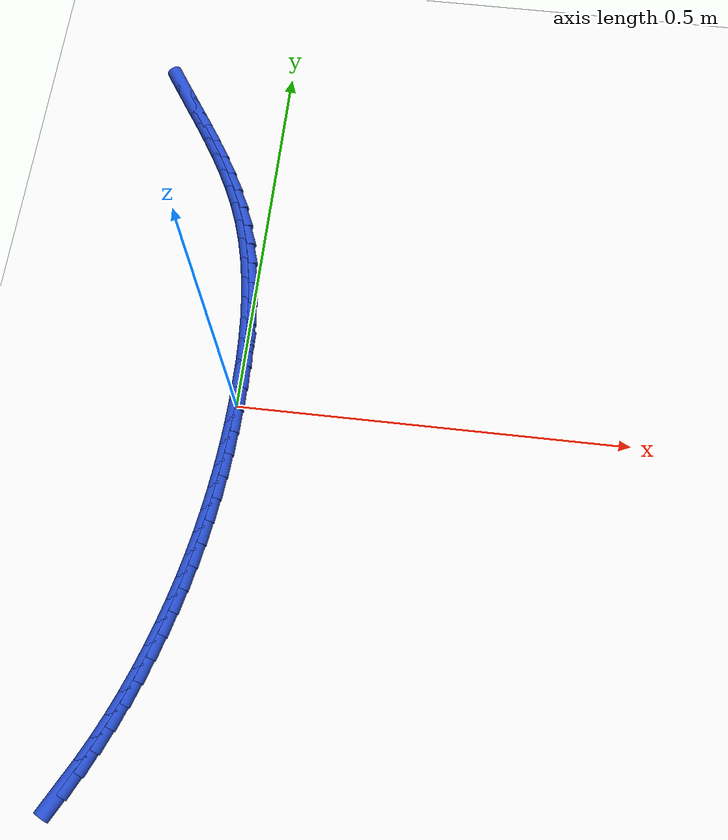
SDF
<sdf version="1.6">
 <world name="default">
  <model name="ground_plane">
   <static>1</static>
   <link name="link">
    <collision name="collision">
     <geometry><plane><normal>0 0 1</normal><size>100 100</size></plane></geometry>
     <surface><friction><ode><mu>100</mu><mu2>50</mu2></ode></friction></surface>
    </collision>
    <visual name="visual">
     <cast_shadows>0</cast_shadows>
     <geometry><plane><normal>0 0 1</normal><size>100 100</size></plane></geometry>
     <material>
      <script><uri>file://media/materials/scripts/gazebo.material</uri><name>Gazebo/WhiteGlow</name></script>
     </material>
    </visual>
   </link>
  </model>
  <model name="line">
   <link name="link_0">
    <pose>3.469446951953614e-18 3.469446951953614e-17 0.01 0 1.57 1.5611416177436104</pose>
    <collision name="collision">
     <geometry><cylinder><radius>0.01</radius><length>0.08</length></cylinder></geometry>
    </collision>
    <visual name="visual">
     <material>
      <script><name>Gazebo/Blue</name><uri>file://media/materials/scripts/gazebo.material</uri></script>
     </material>
     <geometry><cylinder><radius>0.01</radius><length>0.08</length></cylinder></geometry>
    </visual>
   </link>
   <link name="link_1">
    <pose>0.0002862361532264347 0.029646388924655667 0.01 0 1.57 -1.5546341744531493</pose>
    <collision name="collision">
     <geometry><cylinder><radius>0.01</radius><length>0.08</length></cylinder></geometry>
    </collision>
    <visual name="visual">
     <material>
      <script><name>Gazebo/Blue</name><uri>file://media/materials/scripts/gazebo.material</uri></script>
     </material>
     <geometry><cylinder><radius>0.01</radius><length>0.08</length></cylinder></geometry>
    </visual>
   </link>
   <link name="link_2">
    <pose>-0.0001943225178980463 0.05937738125562229 0.01 0 1.57 -1.525424120462081</pose>
    <collision name="collision">
     <geometry><cylinder><radius>0.01</radius><length>0.08</length></cylinder></geometry>
    </collision>
    <visual name="visual">
     <material>
      <script><name>Gazebo/Blue</name><uri>file://media/materials/scripts/gazebo.material</uri></script>
     </material>
     <geometry><cylinder><radius>0.01</radius><length>0.08</length></cylinder></geometry>
    </visual>
   </link>
   <link name="link_3">
    <pose>-0.001542775128238215 0.08907677803118398 0.01 0 1.57 -1.492536186096775</pose>
    <collision name="collision">
     <geometry><cylinder><radius>0.01</radius><length>0.08</length></cylinder></geometry>
    </collision>
    <visual name="visual">
     <material>
      <script><name>Gazebo/Blue</name><uri>file://media/materials/scripts/gazebo.material</uri></script>
     </material>
     <geometry><cylinder><radius>0.01</radius><length>0.08</length></cylinder></geometry>
    </visual>
   </link>
   <link name="link_4">
    <pose>-0.0038602207926588467 0.11862838028962479 0.01 0 1.57 -1.4556434821974928</pose>
    <collision name="collision">
     <geometry><cylinder><radius>0.01</radius><length>0.08</length></cylinder></geometry>
    </collision>
    <visual name="visual">
     <material>
      <script><name>Gazebo/Blue</name><uri>file://media/materials/scripts/gazebo.material</uri></script>
     </material>
     <geometry><cylinder><radius>0.01</radius><length>0.08</length></cylinder></geometry>
    </visual>
   </link>
   <link name="link_5">
    <pose>-0.007247758626024722 0.14791598906922881 0.01 0 1.57 -1.4143834577324519</pose>
    <collision name="collision">
     <geometry><cylinder><radius>0.01</radius><length>0.08</length></cylinder></geometry>
    </collision>
    <visual name="visual">
     <material>
      <script><name>Gazebo/Blue</name><uri>file://media/materials/scripts/gazebo.material</uri></script>
     </material>
     <geometry><cylinder><radius>0.01</radius><length>0.08</length></cylinder></geometry>
    </visual>
   </link>
   <link name="link_6">
    <pose>-0.011806487743200611 0.17682340540827998 0.01 0 1.57 -1.3683694209193837</pose>
    <collision name="collision">
     <geometry><cylinder><radius>0.01</radius><length>0.08</length></cylinder></geometry>
    </collision>
    <visual name="visual">
     <material>
      <script><name>Gazebo/Blue</name><uri>file://media/materials/scripts/gazebo.material</uri></script>
     </material>
     <geometry><cylinder><radius>0.01</radius><length>0.08</length></cylinder></geometry>
    </visual>
   </link>
   <link name="link_7">
    <pose>-0.017637507259051298 0.2052344303450625 0.01 0 1.57 -1.3172096204345358</pose>
    <collision name="collision">
     <geometry><cylinder><radius>0.01</radius><length>0.08</length></cylinder></geometry>
    </collision>
    <visual name="visual">
     <material>
      <script><name>Gazebo/Blue</name><uri>file://media/materials/scripts/gazebo.material</uri></script>
     </material>
     <geometry><cylinder><radius>0.01</radius><length>0.08</length></cylinder></geometry>
    </visual>
   </link>
   <link name="link_8">
    <pose>-0.02484191628844155 0.2330328649178603 0.01 0 1.57 -1.2605368359717921</pose>
    <collision name="collision">
     <geometry><cylinder><radius>0.01</radius><length>0.08</length></cylinder></geometry>
    </collision>
    <visual name="visual">
     <material>
      <script><name>Gazebo/Blue</name><uri>file://media/materials/scripts/gazebo.material</uri></script>
     </material>
     <geometry><cylinder><radius>0.01</radius><length>0.08</length></cylinder></geometry>
    </visual>
   </link>
   <link name="link_9">
    <pose>-0.033520813946236155 0.26010251016495745 0.01 0 1.57 -1.1986327549780607</pose>
    <collision name="collision">
     <geometry><cylinder><radius>0.01</radius><length>0.08</length></cylinder></geometry>
    </collision>
    <visual name="visual">
     <material>
      <script><name>Gazebo/Blue</name><uri>file://media/materials/scripts/gazebo.material</uri></script>
     </material>
     <geometry><cylinder><radius>0.01</radius><length>0.08</length></cylinder></geometry>
    </visual>
   </link>
   <link name="link_10">
    <pose>-0.043762321679934484 0.28633895087391464 0.01 0 1.57 -1.139213759895514</pose>
    <collision name="collision">
     <geometry><cylinder><radius>0.01</radius><length>0.08</length></cylinder></geometry>
    </collision>
    <visual name="visual">
     <material>
      <script><name>Gazebo/Blue</name><uri>file://media/materials/scripts/gazebo.material</uri></script>
     </material>
     <geometry><cylinder><radius>0.01</radius><length>0.08</length></cylinder></geometry>
    </visual>
   </link>
   <link name="link_11">
    <pose>-0.055484500389116 0.311792187167663 0.01 0 1.57 -1.0884135133434998</pose>
    <collision name="collision">
     <geometry><cylinder><radius>0.01</radius><length>0.08</length></cylinder></geometry>
    </collision>
    <visual name="visual">
     <material>
      <script><name>Gazebo/Blue</name><uri>file://media/materials/scripts/gazebo.material</uri></script>
     </material>
     <geometry><cylinder><radius>0.01</radius><length>0.08</length></cylinder></geometry>
    </visual>
   </link>
   <link name="link_12">
    <pose>-0.06848583367064764 0.33662079561162334 0.01 0 1.57 -1.046906645319212</pose>
    <collision name="collision">
     <geometry><cylinder><radius>0.01</radius><length>0.08</length></cylinder></geometry>
    </collision>
    <visual name="visual">
     <material>
      <script><name>Gazebo/Blue</name><uri>file://media/materials/scripts/gazebo.material</uri></script>
     </material>
     <geometry><cylinder><radius>0.01</radius><length>0.08</length></cylinder></geometry>
    </visual>
   </link>
   <link name="link_13">
    <pose>-0.08256231834114076 0.3609856107729212 0.01 0 1.57 -1.0149220393269758</pose>
    <collision name="collision">
     <geometry><cylinder><radius>0.01</radius><length>0.08</length></cylinder></geometry>
    </collision>
    <visual name="visual">
     <material>
      <script><name>Gazebo/Blue</name><uri>file://media/materials/scripts/gazebo.material</uri></script>
     </material>
     <geometry><cylinder><radius>0.01</radius><length>0.08</length></cylinder></geometry>
    </visual>
   </link>
   <link name="link_14">
    <pose>-0.09750995121720682 0.38504746721868244 0.01 0 1.57 -0.9924559427208953</pose>
    <collision name="collision">
     <geometry><cylinder><radius>0.01</radius><length>0.08</length></cylinder></geometry>
    </collision>
    <visual name="visual">
     <material>
      <script><name>Gazebo/Blue</name><uri>file://media/materials/scripts/gazebo.material</uri></script>
     </material>
     <geometry><cylinder><radius>0.01</radius><length>0.08</length></cylinder></geometry>
    </visual>
   </link>
   <link name="link_15">
    <pose>-0.11312472911545718 0.4089671995160327 0.01 0 1.57 -0.9793613064949989</pose>
    <collision name="collision">
     <geometry><cylinder><radius>0.01</radius><length>0.08</length></cylinder></geometry>
    </collision>
    <visual name="visual">
     <material>
      <script><name>Gazebo/Blue</name><uri>file://media/materials/scripts/gazebo.material</uri></script>
     </material>
     <geometry><cylinder><radius>0.01</radius><length>0.08</length></cylinder></geometry>
    </visual>
   </link>
   <link name="link_16">
    <pose>-0.12920264885250338 0.43290564223209793 0.01 0 1.57 -0.9754129761379993</pose>
    <collision name="collision">
     <geometry><cylinder><radius>0.01</radius><length>0.08</length></cylinder></geometry>
    </collision>
    <visual name="visual">
     <material>
      <script><name>Gazebo/Blue</name><uri>file://media/materials/scripts/gazebo.material</uri></script>
     </material>
     <geometry><cylinder><radius>0.01</radius><length>0.08</length></cylinder></geometry>
    </visual>
   </link>
   <link name="link_17">
    <pose>-0.14553970724495666 0.4570236299340035 0.01 0 1.57 -0.9803460234140288</pose>
    <collision name="collision">
     <geometry><cylinder><radius>0.01</radius><length>0.08</length></cylinder></geometry>
    </collision>
    <visual name="visual">
     <material>
      <script><name>Gazebo/Blue</name><uri>file://media/materials/scripts/gazebo.material</uri></script>
     </material>
     <geometry><cylinder><radius>0.01</radius><length>0.08</length></cylinder></geometry>
    </visual>
   </link>
   <link name="link_213">
    <pose>-0.11932916487131755 -0.4769493752666016 0.01 0 1.57 1.0761076455445753</pose>
    <collision name="collision">
     <geometry><cylinder><radius>0.01</radius><length>0.08</length></cylinder></geometry>
    </collision>
    <visual name="visual">
     <material>
      <script><name>Gazebo/Blue</name><uri>file://media/materials/scripts/gazebo.material</uri></script>
     </material>
     <geometry><cylinder><radius>0.01</radius><length>0.08</length></cylinder></geometry>
    </visual>
   </link>
   <link name="link_214">
    <pose>-0.10552132463200815 -0.4513520877701951 0.01 0 1.57 1.1150663105392227</pose>
    <collision name="collision">
     <geometry><cylinder><radius>0.01</radius><length>0.08</length></cylinder></geometry>
    </collision>
    <visual name="visual">
     <material>
      <script><name>Gazebo/Blue</name><uri>file://media/materials/scripts/gazebo.material</uri></script>
     </material>
     <geometry><cylinder><radius>0.01</radius><length>0.08</length></cylinder></geometry>
    </visual>
   </link>
   <link name="link_215">
    <pose>-0.09267451942432824 -0.42514170450375177 0.01 0 1.57 1.151814680195416</pose>
    <collision name="collision">
     <geometry><cylinder><radius>0.01</radius><length>0.08</length></cylinder></geometry>
    </collision>
    <visual name="visual">
     <material>
      <script><name>Gazebo/Blue</name><uri>file://media/materials/scripts/gazebo.material</uri></script>
     </material>
     <geometry><cylinder><radius>0.01</radius><length>0.08</length></cylinder></geometry>
    </visual>
   </link>
   <link name="link_216">
    <pose>-0.0807641376957069 -0.3983979359595753 0.01 0 1.57 1.1865050211602903</pose>
    <collision name="collision">
     <geometry><cylinder><radius>0.01</radius><length>0.08</length></cylinder></geometry>
    </collision>
    <visual name="visual">
     <material>
      <script><name>Gazebo/Blue</name><uri>file://media/materials/scripts/gazebo.material</uri></script>
     </material>
     <geometry><cylinder><radius>0.01</radius><length>0.08</length></cylinder></geometry>
    </visual>
   </link>
   <link name="link_217">
    <pose>-0.06976556789357224 -0.37120049262996696 0.01 0 1.57 1.2192922820087884</pose>
    <collision name="collision">
     <geometry><cylinder><radius>0.01</radius><length>0.08</length></cylinder></geometry>
    </collision>
    <visual name="visual">
     <material>
      <script><name>Gazebo/Blue</name><uri>file://media/materials/scripts/gazebo.material</uri></script>
     </material>
     <geometry><cylinder><radius>0.01</radius><length>0.08</length></cylinder></geometry>
    </visual>
   </link>
   <link name="link_218">
    <pose>-0.05965419846535275 -0.3436290850072288 0.01 0 1.57 1.2503309095007054</pose>
    <collision name="collision">
     <geometry><cylinder><radius>0.01</radius><length>0.08</length></cylinder></geometry>
    </collision>
    <visual name="visual">
     <material>
      <script><name>Gazebo/Blue</name><uri>file://media/materials/scripts/gazebo.material</uri></script>
     </material>
     <geometry><cylinder><radius>0.01</radius><length>0.08</length></cylinder></geometry>
    </visual>
   </link>
   <link name="link_219">
    <pose>-0.050405417858476624 -0.3157634235836623 0.01 0 1.57 1.2797727541447148</pose>
    <collision name="collision">
     <geometry><cylinder><radius>0.01</radius><length>0.08</length></cylinder></geometry>
    </collision>
    <visual name="visual">
     <material>
      <script><name>Gazebo/Blue</name><uri>file://media/materials/scripts/gazebo.material</uri></script>
     </material>
     <geometry><cylinder><radius>0.01</radius><length>0.08</length></cylinder></geometry>
    </visual>
   </link>
   <link name="link_220">
    <pose>-0.0419946145203728 -0.28768321885157094 0.01 0 1.57 1.307775374611542</pose>
    <collision name="collision">
     <geometry><cylinder><radius>0.01</radius><length>0.08</length></cylinder></geometry>
    </collision>
    <visual name="visual">
     <material>
      <script><name>Gazebo/Blue</name><uri>file://media/materials/scripts/gazebo.material</uri></script>
     </material>
     <geometry><cylinder><radius>0.01</radius><length>0.08</length></cylinder></geometry>
    </visual>
   </link>
   <link name="link_221">
    <pose>-0.034397262572274254 -0.2594674301987383 0.01 0 1.57 1.3349086936412589</pose>
    <collision name="collision">
     <geometry><cylinder><radius>0.01</radius><length>0.08</length></cylinder></geometry>
    </collision>
    <visual name="visual">
     <material>
      <script><name>Gazebo/Blue</name><uri>file://media/materials/scripts/gazebo.material</uri></script>
     </material>
     <geometry><cylinder><radius>0.01</radius><length>0.08</length></cylinder></geometry>
    </visual>
   </link>
   <link name="link_222">
    <pose>-0.02759295577665238 -0.23115890000900446 0.01 0 1.57 1.361790595904935</pose>
    <collision name="collision">
     <geometry><cylinder><radius>0.01</radius><length>0.08</length></cylinder></geometry>
    </collision>
    <visual name="visual">
     <material>
      <script><name>Gazebo/Blue</name><uri>file://media/materials/scripts/gazebo.material</uri></script>
     </material>
     <geometry><cylinder><radius>0.01</radius><length>0.08</length></cylinder></geometry>
    </visual>
   </link>
   <link name="link_223">
    <pose>-0.02156714677078403 -0.2027491057554719 0.01 0 1.57 1.388387875025708</pose>
    <collision name="collision">
     <geometry><cylinder><radius>0.01</radius><length>0.08</length></cylinder></geometry>
    </collision>
    <visual name="visual">
     <material>
      <script><name>Gazebo/Blue</name><uri>file://media/materials/scripts/gazebo.material</uri></script>
     </material>
     <geometry><cylinder><radius>0.01</radius><length>0.08</length></cylinder></geometry>
    </visual>
   </link>
   <link name="link_224">
    <pose>-0.016305735294636053 -0.17422560515011346 0.01 0 1.57 1.414620669097067</pose>
    <collision name="collision">
     <geometry><cylinder><radius>0.01</radius><length>0.08</length></cylinder></geometry>
    </collision>
    <visual name="visual">
     <material>
      <script><name>Gazebo/Blue</name><uri>file://media/materials/scripts/gazebo.material</uri></script>
     </material>
     <geometry><cylinder><radius>0.01</radius><length>0.08</length></cylinder></geometry>
    </visual>
   </link>
   <link name="link_225">
    <pose>-0.011794621088174844 -0.14557595590489972 0.01 0 1.57 1.4404131570361</pose>
    <collision name="collision">
     <geometry><cylinder><radius>0.01</radius><length>0.08</length></cylinder></geometry>
    </collision>
    <visual name="visual">
     <material>
      <script><name>Gazebo/Blue</name><uri>file://media/materials/scripts/gazebo.material</uri></script>
     </material>
     <geometry><cylinder><radius>0.01</radius><length>0.08</length></cylinder></geometry>
    </visual>
   </link>
   <link name="link_226">
    <pose>-0.00801970389136698 -0.11678771573180222 0.01 0 1.57 1.4656944734074808</pose>
    <collision name="collision">
     <geometry><cylinder><radius>0.01</radius><length>0.08</length></cylinder></geometry>
    </collision>
    <visual name="visual">
     <material>
      <script><name>Gazebo/Blue</name><uri>file://media/materials/scripts/gazebo.material</uri></script>
     </material>
     <geometry><cylinder><radius>0.01</radius><length>0.08</length></cylinder></geometry>
    </visual>
   </link>
   <link name="link_227">
    <pose>-0.0049668834441790035 -0.08784844234279211 0.01 0 1.57 1.4903994631519424</pose>
    <collision name="collision">
     <geometry><cylinder><radius>0.01</radius><length>0.08</length></cylinder></geometry>
    </collision>
    <visual name="visual">
     <material>
      <script><name>Gazebo/Blue</name><uri>file://media/materials/scripts/gazebo.material</uri></script>
     </material>
     <geometry><cylinder><radius>0.01</radius><length>0.08</length></cylinder></geometry>
    </visual>
   </link>
   <link name="link_228">
    <pose>-0.0026220594865774293 -0.05874569344984025 0.01 0 1.57 1.5144692614549744</pose>
    <collision name="collision">
     <geometry><cylinder><radius>0.01</radius><length>0.08</length></cylinder></geometry>
    </collision>
    <visual name="visual">
     <material>
      <script><name>Gazebo/Blue</name><uri>file://media/materials/scripts/gazebo.material</uri></script>
     </material>
     <geometry><cylinder><radius>0.01</radius><length>0.08</length></cylinder></geometry>
    </visual>
   </link>
   <link name="link_229">
    <pose>-0.0009711317585289327 -0.02946702676491937 0.01 0 1.57 1.537851693393964</pose>
    <collision name="collision">
     <geometry><cylinder><radius>0.01</radius><length>0.08</length></cylinder></geometry>
    </collision>
    <visual name="visual">
     <material>
      <script><name>Gazebo/Blue</name><uri>file://media/materials/scripts/gazebo.material</uri></script>
     </material>
     <geometry><cylinder><radius>0.01</radius><length>0.08</length></cylinder></geometry>
    </visual>
   </link>
   <link name="link_230">
    <pose>-1.3010426069826053e-18 -1.249000902703301e-16 0.01 0 1.57 1.5605014967552107</pose>
    <collision name="collision">
     <geometry><cylinder><radius>0.01</radius><length>0.08</length></cylinder></geometry>
    </collision>
    <visual name="visual">
     <material>
      <script><name>Gazebo/Blue</name><uri>file://media/materials/scripts/gazebo.material</uri></script>
     </material>
     <geometry><cylinder><radius>0.01</radius><length>0.08</length></cylinder></geometry>
    </visual>
   </link>
   <link name="link_231">
    <pose>0.0003054360490428003 0.02966782913294605 0.01 0 1.57 -1.5592122746629298</pose>
    <collision name="collision">
     <geometry><cylinder><radius>0.01</radius><length>0.08</length></cylinder></geometry>
    </collision>
    <visual name="visual">
     <material>
      <script><name>Gazebo/Blue</name><uri>file://media/materials/scripts/gazebo.material</uri></script>
     </material>
     <geometry><cylinder><radius>0.01</radius><length>0.08</length></cylinder></geometry>
    </visual>
   </link>
   <link name="link_232">
    <pose>-4.072335136707985e-05 0.059548902921947824 0.01 0 1.57 -1.5701124628944634</pose>
    <collision name="collision">
     <geometry><cylinder><radius>0.01</radius><length>0.08</length></cylinder></geometry>
    </collision>
    <visual name="visual">
     <material>
      <script><name>Gazebo/Blue</name><uri>file://media/materials/scripts/gazebo.material</uri></script>
     </material>
     <geometry><cylinder><radius>0.01</radius><length>0.08</length></cylinder></geometry>
    </visual>
   </link>
  </model>
 </world>
</sdf>
